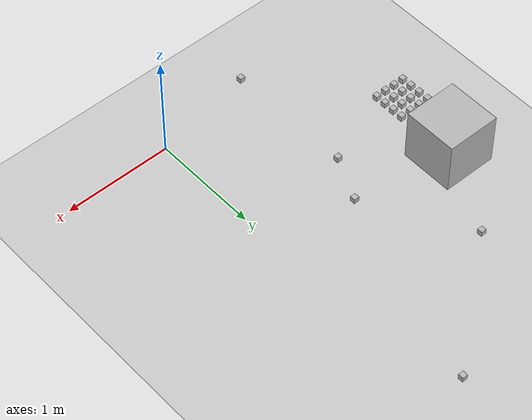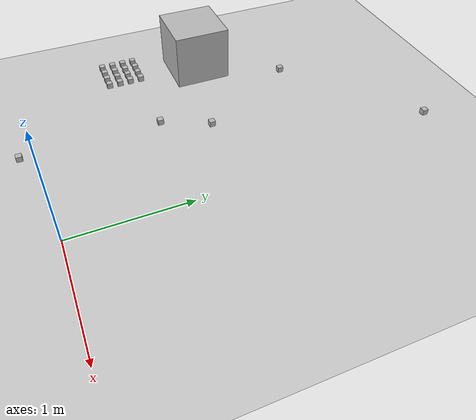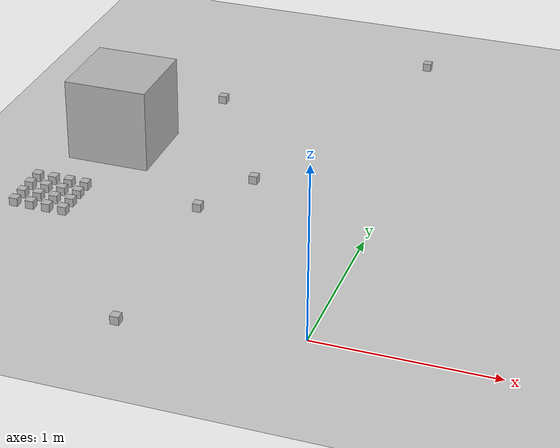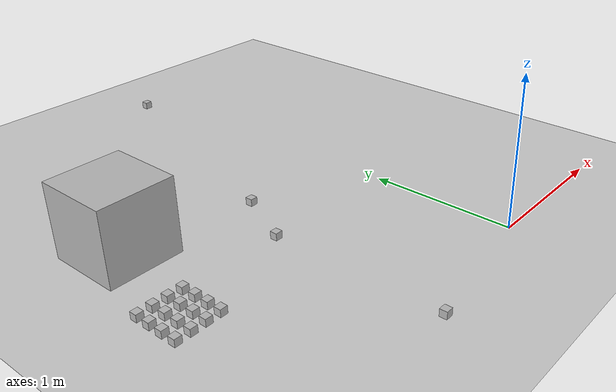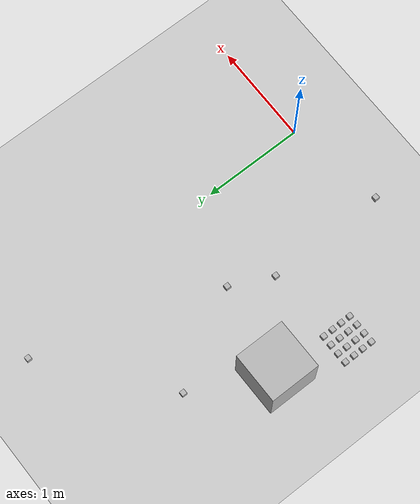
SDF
<sdf version="1.6">
 <world name="default">
  <model name="ground_plane">
   <static>1</static>
   <link name="link">
    <collision name="collision">
     <geometry><plane><normal>0 0 1</normal><size>100 100</size></plane></geometry>
     <surface><friction><ode><mu>100</mu><mu2>50</mu2></ode></friction></surface>
    </collision>
    <visual name="visual">
     <cast_shadows>0</cast_shadows>
     <geometry><plane><normal>0 0 1</normal><size>100 100</size></plane></geometry>
     <material>
      <script><uri>file://media/materials/scripts/gazebo.material</uri><name>Gazebo/Grey</name></script>
     </material>
    </visual>
   </link>
  </model>
  <model name="at4">
   <static>0</static>
   <link name="link">
    <inertial>
     <mass>0.01</mass>
     <inertia><ixx>4e-05</ixx><ixy>0</ixy><ixz>0</ixz><iyy>4e-05</iyy><iyz>0</iyz><izz>4e-05</izz></inertia>
    </inertial>
    <visual name="visual">
     <geometry><box><size>0.05 0.05 0.05</size></box></geometry>
     <material>
      <script>
       <uri>model://at0/materials/scripts</uri>
       <uri>model://at0/materials/textures</uri>
       <name>at0/Diffuse</name>
      </script>
     </material>
    </visual>
    <collision name="collision">
     <geometry><box><size>0.05 0.05 0.05</size></box></geometry>
     <surface><friction><ode><mu>0.8</mu><mu2>0.7</mu2></ode></friction></surface>
    </collision>
   </link>
   <pose>-1.98131 0.73932 0.025 0 -0 0</pose>
  </model>
  <model name="at5">
   <static>0</static>
   <link name="link">
    <inertial>
     <mass>0.01</mass>
     <inertia><ixx>4e-05</ixx><ixy>0</ixy><ixz>0</ixz><iyy>4e-05</iyy><iyz>0</iyz><izz>4e-05</izz></inertia>
    </inertial>
    <visual name="visual">
     <geometry><box><size>0.05 0.05 0.05</size></box></geometry>
     <material>
      <script>
       <uri>model://at0/materials/scripts</uri>
       <uri>model://at0/materials/textures</uri>
       <name>at0/Diffuse</name>
      </script>
     </material>
    </visual>
    <collision name="collision">
     <geometry><box><size>0.05 0.05 0.05</size></box></geometry>
     <surface><friction><ode><mu>0.8</mu><mu2>0.7</mu2></ode></friction></surface>
    </collision>
   </link>
   <pose>-1.88131 0.73932 0.025 0 -0 0</pose>
  </model>
  <model name="at6">
   <static>0</static>
   <link name="link">
    <inertial>
     <mass>0.01</mass>
     <inertia><ixx>4e-05</ixx><ixy>0</ixy><ixz>0</ixz><iyy>4e-05</iyy><iyz>0</iyz><izz>4e-05</izz></inertia>
    </inertial>
    <visual name="visual">
     <geometry><box><size>0.05 0.05 0.05</size></box></geometry>
     <material>
      <script>
       <uri>model://at0/materials/scripts</uri>
       <uri>model://at0/materials/textures</uri>
       <name>at0/Diffuse</name>
      </script>
     </material>
    </visual>
    <collision name="collision">
     <geometry><box><size>0.05 0.05 0.05</size></box></geometry>
     <surface><friction><ode><mu>0.8</mu><mu2>0.7</mu2></ode></friction></surface>
    </collision>
   </link>
   <pose>-1.78131 0.73932 0.025 0 -0 0</pose>
  </model>
  <model name="at7">
   <static>0</static>
   <link name="link">
    <inertial>
     <mass>0.01</mass>
     <inertia><ixx>4e-05</ixx><ixy>0</ixy><ixz>0</ixz><iyy>4e-05</iyy><iyz>0</iyz><izz>4e-05</izz></inertia>
    </inertial>
    <visual name="visual">
     <geometry><box><size>0.05 0.05 0.05</size></box></geometry>
     <material>
      <script>
       <uri>model://at0/materials/scripts</uri>
       <uri>model://at0/materials/textures</uri>
       <name>at0/Diffuse</name>
      </script>
     </material>
    </visual>
    <collision name="collision">
     <geometry><box><size>0.05 0.05 0.05</size></box></geometry>
     <surface><friction><ode><mu>0.8</mu><mu2>0.7</mu2></ode></friction></surface>
    </collision>
   </link>
   <pose>-1.68131 0.73932 0.025 0 -0 0</pose>
  </model>
  <model name="at12">
   <static>0</static>
   <link name="link">
    <inertial>
     <mass>0.01</mass>
     <inertia><ixx>4e-05</ixx><ixy>0</ixy><ixz>0</ixz><iyy>4e-05</iyy><iyz>0</iyz><izz>4e-05</izz></inertia>
    </inertial>
    <visual name="visual">
     <geometry><box><size>0.05 0.05 0.05</size></box></geometry>
     <material>
      <script>
       <uri>model://at0/materials/scripts</uri>
       <uri>model://at0/materials/textures</uri>
       <name>at0/Diffuse</name>
      </script>
     </material>
    </visual>
    <collision name="collision">
     <geometry><box><size>0.05 0.05 0.05</size></box></geometry>
     <surface><friction><ode><mu>0.8</mu><mu2>0.7</mu2></ode></friction></surface>
    </collision>
   </link>
   <pose>-1.98131 0.83932 0.025 0 -0 0</pose>
  </model>
  <model name="at13">
   <static>0</static>
   <link name="link">
    <inertial>
     <mass>0.01</mass>
     <inertia><ixx>4e-05</ixx><ixy>0</ixy><ixz>0</ixz><iyy>4e-05</iyy><iyz>0</iyz><izz>4e-05</izz></inertia>
    </inertial>
    <visual name="visual">
     <geometry><box><size>0.05 0.05 0.05</size></box></geometry>
     <material>
      <script>
       <uri>model://at0/materials/scripts</uri>
       <uri>model://at0/materials/textures</uri>
       <name>at0/Diffuse</name>
      </script>
     </material>
    </visual>
    <collision name="collision">
     <geometry><box><size>0.05 0.05 0.05</size></box></geometry>
     <surface><friction><ode><mu>0.8</mu><mu2>0.7</mu2></ode></friction></surface>
    </collision>
   </link>
   <pose>-1.88131 0.83932 0.025 0 -0 0</pose>
  </model>
  <model name="at14">
   <static>0</static>
   <link name="link">
    <inertial>
     <mass>0.01</mass>
     <inertia><ixx>4e-05</ixx><ixy>0</ixy><ixz>0</ixz><iyy>4e-05</iyy><iyz>0</iyz><izz>4e-05</izz></inertia>
    </inertial>
    <visual name="visual">
     <geometry><box><size>0.05 0.05 0.05</size></box></geometry>
     <material>
      <script>
       <uri>model://at0/materials/scripts</uri>
       <uri>model://at0/materials/textures</uri>
       <name>at0/Diffuse</name>
      </script>
     </material>
    </visual>
    <collision name="collision">
     <geometry><box><size>0.05 0.05 0.05</size></box></geometry>
     <surface><friction><ode><mu>0.8</mu><mu2>0.7</mu2></ode></friction></surface>
    </collision>
   </link>
   <pose>-1.78131 0.83932 0.025 0 -0 0</pose>
  </model>
  <model name="at15">
   <static>0</static>
   <link name="link">
    <inertial>
     <mass>0.01</mass>
     <inertia><ixx>4e-05</ixx><ixy>0</ixy><ixz>0</ixz><iyy>4e-05</iyy><iyz>0</iyz><izz>4e-05</izz></inertia>
    </inertial>
    <visual name="visual">
     <geometry><box><size>0.05 0.05 0.05</size></box></geometry>
     <material>
      <script>
       <uri>model://at0/materials/scripts</uri>
       <uri>model://at0/materials/textures</uri>
       <name>at0/Diffuse</name>
      </script>
     </material>
    </visual>
    <collision name="collision">
     <geometry><box><size>0.05 0.05 0.05</size></box></geometry>
     <surface><friction><ode><mu>0.8</mu><mu2>0.7</mu2></ode></friction></surface>
    </collision>
   </link>
   <pose>-1.68131 0.83932 0.025 0 -0 0</pose>
  </model>
  <model name="at20">
   <static>0</static>
   <link name="link">
    <inertial>
     <mass>0.01</mass>
     <inertia><ixx>4e-05</ixx><ixy>0</ixy><ixz>0</ixz><iyy>4e-05</iyy><iyz>0</iyz><izz>4e-05</izz></inertia>
    </inertial>
    <visual name="visual">
     <geometry><box><size>0.05 0.05 0.05</size></box></geometry>
     <material>
      <script>
       <uri>model://at0/materials/scripts</uri>
       <uri>model://at0/materials/textures</uri>
       <name>at0/Diffuse</name>
      </script>
     </material>
    </visual>
    <collision name="collision">
     <geometry><box><size>0.05 0.05 0.05</size></box></geometry>
     <surface><friction><ode><mu>0.8</mu><mu2>0.7</mu2></ode></friction></surface>
    </collision>
   </link>
   <pose>-1.98131 0.93932 0.025 0 -0 0</pose>
  </model>
  <model name="at21">
   <static>0</static>
   <link name="link">
    <inertial>
     <mass>0.01</mass>
     <inertia><ixx>4e-05</ixx><ixy>0</ixy><ixz>0</ixz><iyy>4e-05</iyy><iyz>0</iyz><izz>4e-05</izz></inertia>
    </inertial>
    <visual name="visual">
     <geometry><box><size>0.05 0.05 0.05</size></box></geometry>
     <material>
      <script>
       <uri>model://at0/materials/scripts</uri>
       <uri>model://at0/materials/textures</uri>
       <name>at0/Diffuse</name>
      </script>
     </material>
    </visual>
    <collision name="collision">
     <geometry><box><size>0.05 0.05 0.05</size></box></geometry>
     <surface><friction><ode><mu>0.8</mu><mu2>0.7</mu2></ode></friction></surface>
    </collision>
   </link>
   <pose>-1.88131 0.93932 0.025 0 -0 0</pose>
  </model>
  <model name="at22">
   <static>0</static>
   <link name="link">
    <inertial>
     <mass>0.01</mass>
     <inertia><ixx>4e-05</ixx><ixy>0</ixy><ixz>0</ixz><iyy>4e-05</iyy><iyz>0</iyz><izz>4e-05</izz></inertia>
    </inertial>
    <visual name="visual">
     <geometry><box><size>0.05 0.05 0.05</size></box></geometry>
     <material>
      <script>
       <uri>model://at0/materials/scripts</uri>
       <uri>model://at0/materials/textures</uri>
       <name>at0/Diffuse</name>
      </script>
     </material>
    </visual>
    <collision name="collision">
     <geometry><box><size>0.05 0.05 0.05</size></box></geometry>
     <surface><friction><ode><mu>0.8</mu><mu2>0.7</mu2></ode></friction></surface>
    </collision>
   </link>
   <pose>-1.78131 0.93932 0.025 0 -0 0</pose>
  </model>
  <model name="at23">
   <static>0</static>
   <link name="link">
    <inertial>
     <mass>0.01</mass>
     <inertia><ixx>4e-05</ixx><ixy>0</ixy><ixz>0</ixz><iyy>4e-05</iyy><iyz>0</iyz><izz>4e-05</izz></inertia>
    </inertial>
    <visual name="visual">
     <geometry><box><size>0.05 0.05 0.05</size></box></geometry>
     <material>
      <script>
       <uri>model://at0/materials/scripts</uri>
       <uri>model://at0/materials/textures</uri>
       <name>at0/Diffuse</name>
      </script>
     </material>
    </visual>
    <collision name="collision">
     <geometry><box><size>0.05 0.05 0.05</size></box></geometry>
     <surface><friction><ode><mu>0.8</mu><mu2>0.7</mu2></ode></friction></surface>
    </collision>
   </link>
   <pose>-1.68131 0.93932 0.025 0 -0 0</pose>
  </model>
  <model name="at28">
   <static>0</static>
   <link name="link">
    <inertial>
     <mass>0.01</mass>
     <inertia><ixx>4e-05</ixx><ixy>0</ixy><ixz>0</ixz><iyy>4e-05</iyy><iyz>0</iyz><izz>4e-05</izz></inertia>
    </inertial>
    <visual name="visual">
     <geometry><box><size>0.05 0.05 0.05</size></box></geometry>
     <material>
      <script>
       <uri>model://at0/materials/scripts</uri>
       <uri>model://at0/materials/textures</uri>
       <name>at0/Diffuse</name>
      </script>
     </material>
    </visual>
    <collision name="collision">
     <geometry><box><size>0.05 0.05 0.05</size></box></geometry>
     <surface><friction><ode><mu>0.8</mu><mu2>0.7</mu2></ode></friction></surface>
    </collision>
   </link>
   <pose>-1.98131 1.03932 0.025 0 -0 0</pose>
  </model>
  <model name="at29">
   <static>0</static>
   <link name="link">
    <inertial>
     <mass>0.01</mass>
     <inertia><ixx>4e-05</ixx><ixy>0</ixy><ixz>0</ixz><iyy>4e-05</iyy><iyz>0</iyz><izz>4e-05</izz></inertia>
    </inertial>
    <visual name="visual">
     <geometry><box><size>0.05 0.05 0.05</size></box></geometry>
     <material>
      <script>
       <uri>model://at0/materials/scripts</uri>
       <uri>model://at0/materials/textures</uri>
       <name>at0/Diffuse</name>
      </script>
     </material>
    </visual>
    <collision name="collision">
     <geometry><box><size>0.05 0.05 0.05</size></box></geometry>
     <surface><friction><ode><mu>0.8</mu><mu2>0.7</mu2></ode></friction></surface>
    </collision>
   </link>
   <pose>-1.88131 1.03932 0.025 0 -0 0</pose>
  </model>
  <model name="at30">
   <static>0</static>
   <link name="link">
    <inertial>
     <mass>0.01</mass>
     <inertia><ixx>4e-05</ixx><ixy>0</ixy><ixz>0</ixz><iyy>4e-05</iyy><iyz>0</iyz><izz>4e-05</izz></inertia>
    </inertial>
    <visual name="visual">
     <geometry><box><size>0.05 0.05 0.05</size></box></geometry>
     <material>
      <script>
       <uri>model://at0/materials/scripts</uri>
       <uri>model://at0/materials/textures</uri>
       <name>at0/Diffuse</name>
      </script>
     </material>
    </visual>
    <collision name="collision">
     <geometry><box><size>0.05 0.05 0.05</size></box></geometry>
     <surface><friction><ode><mu>0.8</mu><mu2>0.7</mu2></ode></friction></surface>
    </collision>
   </link>
   <pose>-1.78131 1.03932 0.025 0 -0 0</pose>
  </model>
  <model name="at31">
   <static>0</static>
   <link name="link">
    <inertial>
     <mass>0.01</mass>
     <inertia><ixx>4e-05</ixx><ixy>0</ixy><ixz>0</ixz><iyy>4e-05</iyy><iyz>0</iyz><izz>4e-05</izz></inertia>
    </inertial>
    <visual name="visual">
     <geometry><box><size>0.05 0.05 0.05</size></box></geometry>
     <material>
      <script>
       <uri>model://at0/materials/scripts</uri>
       <uri>model://at0/materials/textures</uri>
       <name>at0/Diffuse</name>
      </script>
     </material>
    </visual>
    <collision name="collision">
     <geometry><box><size>0.05 0.05 0.05</size></box></geometry>
     <surface><friction><ode><mu>0.8</mu><mu2>0.7</mu2></ode></friction></surface>
    </collision>
   </link>
   <pose>-1.68131 1.03932 0.025 0 -0 0</pose>
  </model>
  <model name="at101">
   <static>0</static>
   <link name="link">
    <inertial>
     <mass>0.01</mass>
     <inertia><ixx>4e-05</ixx><ixy>0</ixy><ixz>0</ixz><iyy>4e-05</iyy><iyz>0</iyz><izz>4e-05</izz></inertia>
    </inertial>
    <visual name="visual">
     <geometry><box><size>0.05 0.05 0.05</size></box></geometry>
     <material>
      <script>
       <uri>model://at0/materials/scripts</uri>
       <uri>model://at0/materials/textures</uri>
       <name>at0/Diffuse</name>
      </script>
     </material>
    </visual>
    <collision name="collision">
     <geometry><box><size>0.05 0.05 0.05</size></box></geometry>
     <surface><friction><ode><mu>0.8</mu><mu2>0.7</mu2></ode></friction></surface>
    </collision>
   </link>
   <pose>-0.788479 1.42778 0.025 0 -0 0</pose>
  </model>
  <model name="at102">
   <static>0</static>
   <link name="link">
    <inertial>
     <mass>0.01</mass>
     <inertia><ixx>4e-05</ixx><ixy>0</ixy><ixz>0</ixz><iyy>4e-05</iyy><iyz>0</iyz><izz>4e-05</izz></inertia>
    </inertial>
    <visual name="visual">
     <geometry><box><size>0.05 0.05 0.05</size></box></geometry>
     <material>
      <script>
       <uri>model://at0/materials/scripts</uri>
       <uri>model://at0/materials/textures</uri>
       <name>at0/Diffuse</name>
      </script>
     </material>
    </visual>
    <collision name="collision">
     <geometry><box><size>0.05 0.05 0.05</size></box></geometry>
     <surface><friction><ode><mu>0.8</mu><mu2>0.7</mu2></ode></friction></surface>
    </collision>
   </link>
   <pose>-0.962866 -0.17001 0.025 0 -0 0</pose>
  </model>
  <model name="at119">
   <static>0</static>
   <link name="link">
    <inertial>
     <mass>0.01</mass>
     <inertia><ixx>4e-05</ixx><ixy>0</ixy><ixz>0</ixz><iyy>4e-05</iyy><iyz>0</iyz><izz>4e-05</izz></inertia>
    </inertial>
    <visual name="visual">
     <geometry><box><size>0.05 0.05 0.05</size></box></geometry>
     <material>
      <script>
       <uri>model://at0/materials/scripts</uri>
       <uri>model://at0/materials/textures</uri>
       <name>at0/Diffuse</name>
      </script>
     </material>
    </visual>
    <collision name="collision">
     <geometry><box><size>0.05 0.05 0.05</size></box></geometry>
     <surface><friction><ode><mu>0.8</mu><mu2>0.7</mu2></ode></friction></surface>
    </collision>
   </link>
   <pose>-0.221245 3.22504 0.025 0 -0 0</pose>
  </model>
  <model name="at123">
   <static>0</static>
   <link name="link">
    <inertial>
     <mass>0.01</mass>
     <inertia><ixx>4e-05</ixx><ixy>0</ixy><ixz>0</ixz><iyy>4e-05</iyy><iyz>0</iyz><izz>4e-05</izz></inertia>
    </inertial>
    <visual name="visual">
     <geometry><box><size>0.05 0.05 0.05</size></box></geometry>
     <material>
      <script>
       <uri>model://at0/materials/scripts</uri>
       <uri>model://at0/materials/textures</uri>
       <name>at0/Diffuse</name>
      </script>
     </material>
    </visual>
    <collision name="collision">
     <geometry><box><size>0.05 0.05 0.05</size></box></geometry>
     <surface><friction><ode><mu>0.8</mu><mu2>0.7</mu2></ode></friction></surface>
    </collision>
   </link>
   <pose>-0.979852 1.02166 0.025 0 -0 0</pose>
  </model>
  <model name="at124">
   <static>0</static>
   <link name="link">
    <inertial>
     <mass>0.01</mass>
     <inertia><ixx>4e-05</ixx><ixy>0</ixy><ixz>0</ixz><iyy>4e-05</iyy><iyz>0</iyz><izz>4e-05</izz></inertia>
    </inertial>
    <visual name="visual">
     <geometry><box><size>0.05 0.05 0.05</size></box></geometry>
     <material>
      <script>
       <uri>model://at0/materials/scripts</uri>
       <uri>model://at0/materials/textures</uri>
       <name>at0/Diffuse</name>
      </script>
     </material>
    </visual>
    <collision name="collision">
     <geometry><box><size>0.05 0.05 0.05</size></box></geometry>
     <surface><friction><ode><mu>0.8</mu><mu2>0.7</mu2></ode></friction></surface>
    </collision>
   </link>
   <pose>-1.31503 2.33818 0.025 0 -0 0</pose>
  </model>
  <model name="box">
   <pose>-1.6773 1.59341 0.25 0 -0 0</pose>
   <static>1</static>
   <link name="link">
    <inertial>
     <mass>0.01</mass>
     <inertia><ixx>4e-05</ixx><ixy>0</ixy><ixz>0</ixz><iyy>4e-05</iyy><iyz>0</iyz><izz>4e-05</izz></inertia>
    </inertial>
    <visual name="visual">
     <geometry><box><size>0.5 0.5 0.5</size></box></geometry>
     <material>
      <script>
       <uri>model://box/materials/scripts</uri>
       <uri>model://box/materials/textures</uri>
       <name>box/Diffuse</name>
      </script>
     </material>
    </visual>
    <collision name="collision">
     <geometry><box><size>0.5 0.5 0.5</size></box></geometry>
     <surface><friction><ode><mu>0.8</mu><mu2>0.7</mu2></ode></friction></surface>
    </collision>
   </link>
  </model>
 </world>
</sdf>
